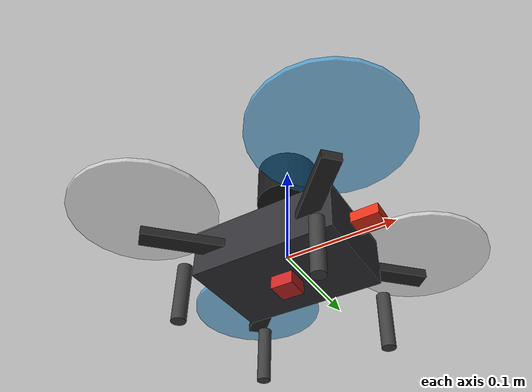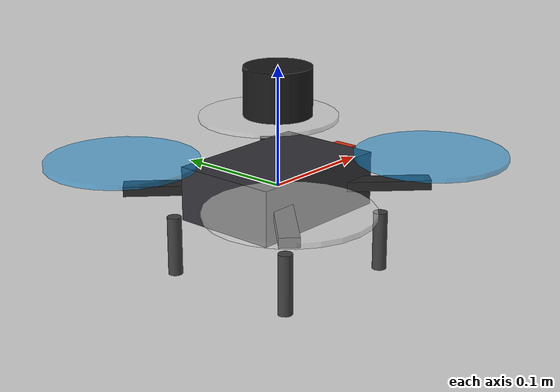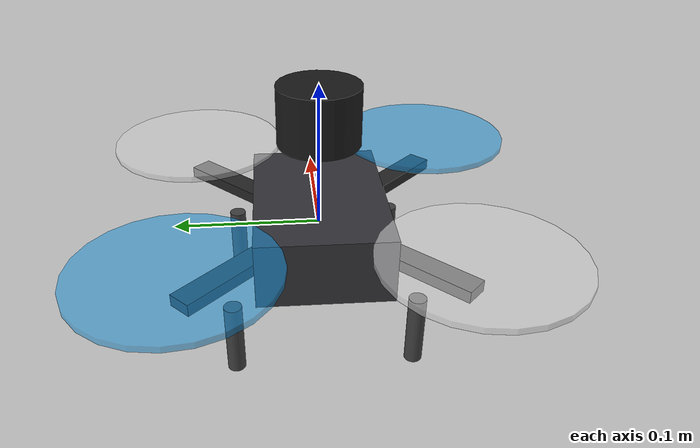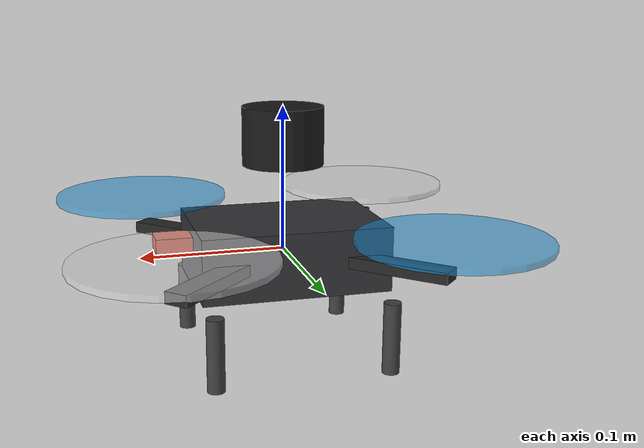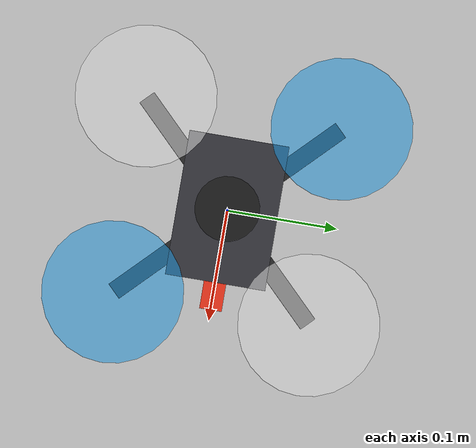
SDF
<?xml version='1.0'?>
<sdf version="1.9">
  <model name="flyduck">

    <!-- QAV250: 250 mm diagonal -> rotors at +/-0.0884 in X pattern -->
    <link name="base_link">
      <inertial>
        <mass>0.75</mass>
        <inertia>
          <ixx>0.0025</ixx>
          <ixy>0</ixy>
          <ixz>0</ixz>
          <iyy>0.0025</iyy>
          <iyz>0</iyz>
          <izz>0.0045</izz>
        </inertia>
      </inertial>

      <collision name="base_collision">
        <geometry>
          <box><size>0.13 0.13 0.05</size></box>
        </geometry>
      </collision>

      <visual name="body_visual">
        <geometry>
          <box><size>0.13 0.09 0.045</size></box>
        </geometry>
        <material>
          <ambient>0.15 0.15 0.17 1</ambient>
          <diffuse>0.2 0.2 0.22 1</diffuse>
        </material>
      </visual>

      <!-- crossed arms: +45 deg carries rotors 2/3, -45 deg carries rotors 0/1 -->
      <visual name="arm_a_visual">
        <pose>0 0 0 0 0 0.785398</pose>
        <geometry>
          <box><size>0.25 0.016 0.008</size></box>
        </geometry>
        <material>
          <ambient>0.1 0.1 0.1 1</ambient>
          <diffuse>0.15 0.15 0.15 1</diffuse>
        </material>
      </visual>
      <visual name="arm_b_visual">
        <pose>0 0 0 0 0 -0.785398</pose>
        <geometry>
          <box><size>0.25 0.016 0.008</size></box>
        </geometry>
        <material>
          <ambient>0.1 0.1 0.1 1</ambient>
          <diffuse>0.15 0.15 0.15 1</diffuse>
        </material>
      </visual>

      <!-- nose marker: +X is forward, matches the Pixhawk arrow -->
      <visual name="nose_visual">
        <pose>0.075 0 0.01 0 0 0</pose>
        <geometry>
          <box><size>0.03 0.02 0.01</size></box>
        </geometry>
        <material>
          <ambient>0.9 0.2 0.1 1</ambient>
          <diffuse>0.9 0.2 0.1 1</diffuse>
        </material>
      </visual>

      <!-- legs: 7.5 cm clearance so the down-facing Evo clears the ground when landed -->
      <collision name="leg_0_collision">
        <pose>0.06 -0.06 -0.05 0 0 0</pose>
        <geometry><cylinder><radius>0.006</radius><length>0.05</length></cylinder></geometry>
      </collision>
      <visual name="leg_0_visual">
        <pose>0.06 -0.06 -0.05 0 0 0</pose>
        <geometry><cylinder><radius>0.006</radius><length>0.05</length></cylinder></geometry>
        <material><ambient>0.2 0.2 0.2 1</ambient><diffuse>0.25 0.25 0.25 1</diffuse></material>
      </visual>

      <collision name="leg_1_collision">
        <pose>-0.06 0.06 -0.05 0 0 0</pose>
        <geometry><cylinder><radius>0.006</radius><length>0.05</length></cylinder></geometry>
      </collision>
      <visual name="leg_1_visual">
        <pose>-0.06 0.06 -0.05 0 0 0</pose>
        <geometry><cylinder><radius>0.006</radius><length>0.05</length></cylinder></geometry>
        <material><ambient>0.2 0.2 0.2 1</ambient><diffuse>0.25 0.25 0.25 1</diffuse></material>
      </visual>

      <collision name="leg_2_collision">
        <pose>0.06 0.06 -0.05 0 0 0</pose>
        <geometry><cylinder><radius>0.006</radius><length>0.05</length></cylinder></geometry>
      </collision>
      <visual name="leg_2_visual">
        <pose>0.06 0.06 -0.05 0 0 0</pose>
        <geometry><cylinder><radius>0.006</radius><length>0.05</length></cylinder></geometry>
        <material><ambient>0.2 0.2 0.2 1</ambient><diffuse>0.25 0.25 0.25 1</diffuse></material>
      </visual>

      <collision name="leg_3_collision">
        <pose>-0.06 -0.06 -0.05 0 0 0</pose>
        <geometry><cylinder><radius>0.006</radius><length>0.05</length></cylinder></geometry>
      </collision>
      <visual name="leg_3_visual">
        <pose>-0.06 -0.06 -0.05 0 0 0</pose>
        <geometry><cylinder><radius>0.006</radius><length>0.05</length></cylinder></geometry>
        <material><ambient>0.2 0.2 0.2 1</ambient><diffuse>0.25 0.25 0.25 1</diffuse></material>
      </visual>
    </link>

    <link name="imu_link">
      <pose relative_to="base_link">0 0 0 0 0 0</pose>
      <inertial>
        <mass>0.005</mass>
        <inertia>
          <ixx>1e-07</ixx><ixy>0</ixy><ixz>0</ixz>
          <iyy>1e-07</iyy><iyz>0</iyz><izz>1e-07</izz>
        </inertia>
      </inertial>
      <!-- 180 deg roll: ArduPilotPlugin expects the IMU in a Z-down frame -->
      <sensor name="imu_sensor" type="imu">
        <gz_frame_id>imu_link</gz_frame_id>
        <pose degrees="true">0 0 0 180 0 0</pose>
        <always_on>1</always_on>
        <update_rate>1000</update_rate>
        <!-- MEMS-grade noise + bias, so EKF fusion is not idealised -->
        <imu>
          <angular_velocity>
            <x><noise type="gaussian">
              <mean>0</mean><stddev>0.0003394</stddev>
              <bias_mean>0.0000075</bias_mean><bias_stddev>0.0000008</bias_stddev>
            </noise></x>
            <y><noise type="gaussian">
              <mean>0</mean><stddev>0.0003394</stddev>
              <bias_mean>0.0000075</bias_mean><bias_stddev>0.0000008</bias_stddev>
            </noise></y>
            <z><noise type="gaussian">
              <mean>0</mean><stddev>0.0003394</stddev>
              <bias_mean>0.0000075</bias_mean><bias_stddev>0.0000008</bias_stddev>
            </noise></z>
          </angular_velocity>
          <linear_acceleration>
            <x><noise type="gaussian">
              <mean>0</mean><stddev>0.004</stddev>
              <bias_mean>0.05</bias_mean><bias_stddev>0.001</bias_stddev>
            </noise></x>
            <y><noise type="gaussian">
              <mean>0</mean><stddev>0.004</stddev>
              <bias_mean>0.05</bias_mean><bias_stddev>0.001</bias_stddev>
            </noise></y>
            <z><noise type="gaussian">
              <mean>0</mean><stddev>0.004</stddev>
              <bias_mean>0.05</bias_mean><bias_stddev>0.001</bias_stddev>
            </noise></z>
          </linear_acceleration>
        </imu>
      </sensor>
    </link>

    <joint name="imu_joint" type="fixed">
      <parent>base_link</parent>
      <child>imu_link</child>
    </joint>

    <!-- rotor 0 = ArduPilot motor 1, front-right, CCW -->
    <link name="rotor_0">
      <pose relative_to="base_link">0.0884 -0.0884 0.023 0 0 0</pose>
      <inertial>
        <mass>0.008</mass>
        <inertia>
          <ixx>1e-06</ixx><ixy>0</ixy><ixz>0</ixz>
          <iyy>2e-05</iyy><iyz>0</iyz><izz>2e-05</izz>
        </inertia>
      </inertial>
      <visual name="rotor_0_visual">
        <geometry>
          <cylinder><radius>0.0635</radius><length>0.004</length></cylinder>
        </geometry>
        <material>
          <ambient>0.1 0.6 0.9 0.55</ambient>
          <diffuse>0.1 0.6 0.9 0.55</diffuse>
        </material>
      </visual>
    </link>
    <joint name="rotor_0_joint" type="revolute">
      <parent>base_link</parent>
      <child>rotor_0</child>
      <axis>
        <xyz>0 0 1</xyz>
        <limit><lower>-1e16</lower><upper>1e16</upper></limit>
        <dynamics><damping>0.0005</damping></dynamics>
      </axis>
    </joint>

    <!-- rotor 1 = ArduPilot motor 2, back-left, CCW -->
    <link name="rotor_1">
      <pose relative_to="base_link">-0.0884 0.0884 0.023 0 0 0</pose>
      <inertial>
        <mass>0.008</mass>
        <inertia>
          <ixx>1e-06</ixx><ixy>0</ixy><ixz>0</ixz>
          <iyy>2e-05</iyy><iyz>0</iyz><izz>2e-05</izz>
        </inertia>
      </inertial>
      <visual name="rotor_1_visual">
        <geometry>
          <cylinder><radius>0.0635</radius><length>0.004</length></cylinder>
        </geometry>
        <material>
          <ambient>0.1 0.6 0.9 0.55</ambient>
          <diffuse>0.1 0.6 0.9 0.55</diffuse>
        </material>
      </visual>
    </link>
    <joint name="rotor_1_joint" type="revolute">
      <parent>base_link</parent>
      <child>rotor_1</child>
      <axis>
        <xyz>0 0 1</xyz>
        <limit><lower>-1e16</lower><upper>1e16</upper></limit>
        <dynamics><damping>0.0005</damping></dynamics>
      </axis>
    </joint>

    <!-- rotor 2 = ArduPilot motor 3, front-left, CW -->
    <link name="rotor_2">
      <pose relative_to="base_link">0.0884 0.0884 0.023 0 0 0</pose>
      <inertial>
        <mass>0.008</mass>
        <inertia>
          <ixx>1e-06</ixx><ixy>0</ixy><ixz>0</ixz>
          <iyy>2e-05</iyy><iyz>0</iyz><izz>2e-05</izz>
        </inertia>
      </inertial>
      <visual name="rotor_2_visual">
        <geometry>
          <cylinder><radius>0.0635</radius><length>0.004</length></cylinder>
        </geometry>
        <material>
          <ambient>0.9 0.9 0.9 0.55</ambient>
          <diffuse>0.9 0.9 0.9 0.55</diffuse>
        </material>
      </visual>
    </link>
    <joint name="rotor_2_joint" type="revolute">
      <parent>base_link</parent>
      <child>rotor_2</child>
      <axis>
        <xyz>0 0 1</xyz>
        <limit><lower>-1e16</lower><upper>1e16</upper></limit>
        <dynamics><damping>0.0005</damping></dynamics>
      </axis>
    </joint>

    <!-- rotor 3 = ArduPilot motor 4, back-right, CW -->
    <link name="rotor_3">
      <pose relative_to="base_link">-0.0884 -0.0884 0.023 0 0 0</pose>
      <inertial>
        <mass>0.008</mass>
        <inertia>
          <ixx>1e-06</ixx><ixy>0</ixy><ixz>0</ixz>
          <iyy>2e-05</iyy><iyz>0</iyz><izz>2e-05</izz>
        </inertia>
      </inertial>
      <visual name="rotor_3_visual">
        <geometry>
          <cylinder><radius>0.0635</radius><length>0.004</length></cylinder>
        </geometry>
        <material>
          <ambient>0.9 0.9 0.9 0.55</ambient>
          <diffuse>0.9 0.9 0.9 0.55</diffuse>
        </material>
      </visual>
    </link>
    <joint name="rotor_3_joint" type="revolute">
      <parent>base_link</parent>
      <child>rotor_3</child>
      <axis>
        <xyz>0 0 1</xyz>
        <limit><lower>-1e16</lower><upper>1e16</upper></limit>
        <dynamics><damping>0.0005</damping></dynamics>
      </axis>
    </joint>

    <!-- RPLIDAR C1: 8 cm above base_link, 0 deg = nose (matches the hardware TF) -->
    <link name="laser">
      <pose relative_to="base_link">0 0 0.08 0 0 0</pose>
      <inertial>
        <mass>0.11</mass>
        <inertia>
          <ixx>4e-05</ixx><ixy>0</ixy><ixz>0</ixz>
          <iyy>4e-05</iyy><iyz>0</iyz><izz>6e-05</izz>
        </inertia>
      </inertial>
      <visual name="laser_visual">
        <geometry>
          <cylinder><radius>0.028</radius><length>0.04</length></cylinder>
        </geometry>
        <material>
          <ambient>0.05 0.05 0.05 1</ambient>
          <diffuse>0.1 0.1 0.1 1</diffuse>
        </material>
      </visual>
      <sensor name="rplidar_c1" type="gpu_lidar">
        <always_on>1</always_on>
        <update_rate>10</update_rate>
        <topic>scan</topic>
        <gz_frame_id>laser</gz_frame_id>
        <lidar>
          <scan>
            <horizontal>
              <samples>500</samples>
              <resolution>1</resolution>
              <min_angle>-3.141593</min_angle>
              <max_angle>3.141593</max_angle>
            </horizontal>
          </scan>
          <range>
            <min>0.15</min>
            <max>12.0</max>
            <resolution>0.01</resolution>
          </range>
          <noise>
            <type>gaussian</type>
            <mean>0</mean>
            <stddev>0.01</stddev>
          </noise>
        </lidar>
      </sensor>
    </link>
    <joint name="laser_joint" type="fixed">
      <parent>base_link</parent>
      <child>laser</child>
    </joint>

    <!-- TeraRanger Evo Mini: single ray, pitched 90 deg to look straight down -->
    <link name="evo_mini">
      <pose relative_to="base_link">0 0 -0.028 0 1.570796 0</pose>
      <inertial>
        <mass>0.009</mass>
        <inertia>
          <ixx>1e-06</ixx><ixy>0</ixy><ixz>0</ixz>
          <iyy>1e-06</iyy><iyz>0</iyz><izz>1e-06</izz>
        </inertia>
      </inertial>
      <visual name="evo_visual">
        <geometry>
          <box><size>0.012 0.02 0.02</size></box>
        </geometry>
        <material>
          <ambient>0.8 0.15 0.15 1</ambient>
          <diffuse>0.8 0.15 0.15 1</diffuse>
        </material>
      </visual>
      <sensor name="evo_mini" type="gpu_lidar">
        <always_on>1</always_on>
        <update_rate>25</update_rate>
        <topic>rangefinder</topic>
        <gz_frame_id>evo_mini</gz_frame_id>
        <lidar>
          <scan>
            <horizontal>
              <samples>1</samples>
              <resolution>1</resolution>
              <min_angle>0</min_angle>
              <max_angle>0</max_angle>
            </horizontal>
          </scan>
          <range>
            <min>0.03</min>
            <max>3.3</max>
            <resolution>0.001</resolution>
          </range>
          <noise>
            <type>gaussian</type>
            <mean>0</mean>
            <stddev>0.005</stddev>
          </noise>
        </lidar>
      </sensor>
    </link>
    <joint name="evo_mini_joint" type="fixed">
      <parent>base_link</parent>
      <child>evo_mini</child>
    </joint>

    <plugin filename="gz-sim-joint-state-publisher-system"
      name="gz::sim::systems::JointStatePublisher">
    </plugin>

    <!-- lift-drag: 2 blade elements per rotor. area tuned so 0.9 kg hovers
         near 26% throttle, matching the real MOT_THST_HOVER -->
    <plugin filename="gz-sim-lift-drag-system" name="gz::sim::systems::LiftDrag">
      <a0>0.3</a0><alpha_stall>1.4</alpha_stall>
      <cla>4.2500</cla><cda>0.10</cda><cma>0.0</cma>
      <cla_stall>-0.025</cla_stall><cda_stall>0.0</cda_stall><cma_stall>0.0</cma_stall>
      <area>0.00112</area><air_density>1.2041</air_density>
      <cp>0.0445 0 0</cp><forward>0 1 0</forward><upward>0 0 1</upward>
      <link_name>rotor_0</link_name>
    </plugin>
    <plugin filename="gz-sim-lift-drag-system" name="gz::sim::systems::LiftDrag">
      <a0>0.3</a0><alpha_stall>1.4</alpha_stall>
      <cla>4.2500</cla><cda>0.10</cda><cma>0.0</cma>
      <cla_stall>-0.025</cla_stall><cda_stall>0.0</cda_stall><cma_stall>0.0</cma_stall>
      <area>0.00112</area><air_density>1.2041</air_density>
      <cp>-0.0445 0 0</cp><forward>0 -1 0</forward><upward>0 0 1</upward>
      <link_name>rotor_0</link_name>
    </plugin>

    <plugin filename="gz-sim-lift-drag-system" name="gz::sim::systems::LiftDrag">
      <a0>0.3</a0><alpha_stall>1.4</alpha_stall>
      <cla>4.2500</cla><cda>0.10</cda><cma>0.0</cma>
      <cla_stall>-0.025</cla_stall><cda_stall>0.0</cda_stall><cma_stall>0.0</cma_stall>
      <area>0.00112</area><air_density>1.2041</air_density>
      <cp>0.0445 0 0</cp><forward>0 1 0</forward><upward>0 0 1</upward>
      <link_name>rotor_1</link_name>
    </plugin>
    <plugin filename="gz-sim-lift-drag-system" name="gz::sim::systems::LiftDrag">
      <a0>0.3</a0><alpha_stall>1.4</alpha_stall>
      <cla>4.2500</cla><cda>0.10</cda><cma>0.0</cma>
      <cla_stall>-0.025</cla_stall><cda_stall>0.0</cda_stall><cma_stall>0.0</cma_stall>
      <area>0.00112</area><air_density>1.2041</air_density>
      <cp>-0.0445 0 0</cp><forward>0 -1 0</forward><upward>0 0 1</upward>
      <link_name>rotor_1</link_name>
    </plugin>

    <plugin filename="gz-sim-lift-drag-system" name="gz::sim::systems::LiftDrag">
      <a0>0.3</a0><alpha_stall>1.4</alpha_stall>
      <cla>4.2500</cla><cda>0.10</cda><cma>0.0</cma>
      <cla_stall>-0.025</cla_stall><cda_stall>0.0</cda_stall><cma_stall>0.0</cma_stall>
      <area>0.00112</area><air_density>1.2041</air_density>
      <cp>0.0445 0 0</cp><forward>0 -1 0</forward><upward>0 0 1</upward>
      <link_name>rotor_2</link_name>
    </plugin>
    <plugin filename="gz-sim-lift-drag-system" name="gz::sim::systems::LiftDrag">
      <a0>0.3</a0><alpha_stall>1.4</alpha_stall>
      <cla>4.2500</cla><cda>0.10</cda><cma>0.0</cma>
      <cla_stall>-0.025</cla_stall><cda_stall>0.0</cda_stall><cma_stall>0.0</cma_stall>
      <area>0.00112</area><air_density>1.2041</air_density>
      <cp>-0.0445 0 0</cp><forward>0 1 0</forward><upward>0 0 1</upward>
      <link_name>rotor_2</link_name>
    </plugin>

    <plugin filename="gz-sim-lift-drag-system" name="gz::sim::systems::LiftDrag">
      <a0>0.3</a0><alpha_stall>1.4</alpha_stall>
      <cla>4.2500</cla><cda>0.10</cda><cma>0.0</cma>
      <cla_stall>-0.025</cla_stall><cda_stall>0.0</cda_stall><cma_stall>0.0</cma_stall>
      <area>0.00112</area><air_density>1.2041</air_density>
      <cp>0.0445 0 0</cp><forward>0 -1 0</forward><upward>0 0 1</upward>
      <link_name>rotor_3</link_name>
    </plugin>
    <plugin filename="gz-sim-lift-drag-system" name="gz::sim::systems::LiftDrag">
      <a0>0.3</a0><alpha_stall>1.4</alpha_stall>
      <cla>4.2500</cla><cda>0.10</cda><cma>0.0</cma>
      <cla_stall>-0.025</cla_stall><cda_stall>0.0</cda_stall><cma_stall>0.0</cma_stall>
      <area>0.00112</area><air_density>1.2041</air_density>
      <cp>-0.0445 0 0</cp><forward>0 1 0</forward><upward>0 0 1</upward>
      <link_name>rotor_3</link_name>
    </plugin>

    <plugin filename="gz-sim-apply-joint-force-system"
      name="gz::sim::systems::ApplyJointForce">
      <joint_name>rotor_0_joint</joint_name>
    </plugin>
    <plugin filename="gz-sim-apply-joint-force-system"
      name="gz::sim::systems::ApplyJointForce">
      <joint_name>rotor_1_joint</joint_name>
    </plugin>
    <plugin filename="gz-sim-apply-joint-force-system"
      name="gz::sim::systems::ApplyJointForce">
      <joint_name>rotor_2_joint</joint_name>
    </plugin>
    <plugin filename="gz-sim-apply-joint-force-system"
      name="gz::sim::systems::ApplyJointForce">
      <joint_name>rotor_3_joint</joint_name>
    </plugin>

    <plugin name="ArduPilotPlugin" filename="ArduPilotPlugin">
      <fdm_addr>127.0.0.1</fdm_addr>
      <fdm_port_in>9002</fdm_port_in>
      <connectionTimeoutMaxCount>5</connectionTimeoutMaxCount>
      <lock_step>1</lock_step>
      <no_time_sync>1</no_time_sync>
      <have_32_channels>0</have_32_channels>

      <modelXYZToAirplaneXForwardZDown degrees="true">0 0 0 180 0 0</modelXYZToAirplaneXForwardZDown>
      <gazeboXYZToNED degrees="true">0 0 0 180 0 90</gazeboXYZToNED>

      <imuName>imu_link::imu_sensor</imuName>

      <!-- multiplier = max rotor rad/s. 1800 ~ 17000 rpm, typical 5 inch on 3S -->
      <control channel="0">
        <jointName>rotor_0_joint</jointName>
        <useForce>1</useForce>
        <multiplier>1800</multiplier>
        <offset>0</offset>
        <servo_min>1000</servo_min>
        <servo_max>2000</servo_max>
        <type>VELOCITY</type>
        <p_gain>0.02</p_gain>
        <i_gain>0</i_gain>
        <d_gain>0</d_gain>
        <i_max>0</i_max>
        <i_min>0</i_min>
        <cmd_max>2.5</cmd_max>
        <cmd_min>-2.5</cmd_min>
        <controlVelocitySlowdownSim>1</controlVelocitySlowdownSim>
      </control>

      <control channel="1">
        <jointName>rotor_1_joint</jointName>
        <useForce>1</useForce>
        <multiplier>1800</multiplier>
        <offset>0</offset>
        <servo_min>1000</servo_min>
        <servo_max>2000</servo_max>
        <type>VELOCITY</type>
        <p_gain>0.02</p_gain>
        <i_gain>0</i_gain>
        <d_gain>0</d_gain>
        <i_max>0</i_max>
        <i_min>0</i_min>
        <cmd_max>2.5</cmd_max>
        <cmd_min>-2.5</cmd_min>
        <controlVelocitySlowdownSim>1</controlVelocitySlowdownSim>
      </control>

      <control channel="2">
        <jointName>rotor_2_joint</jointName>
        <useForce>1</useForce>
        <multiplier>-1800</multiplier>
        <offset>0</offset>
        <servo_min>1000</servo_min>
        <servo_max>2000</servo_max>
        <type>VELOCITY</type>
        <p_gain>0.02</p_gain>
        <i_gain>0</i_gain>
        <d_gain>0</d_gain>
        <i_max>0</i_max>
        <i_min>0</i_min>
        <cmd_max>2.5</cmd_max>
        <cmd_min>-2.5</cmd_min>
        <controlVelocitySlowdownSim>1</controlVelocitySlowdownSim>
      </control>

      <control channel="3">
        <jointName>rotor_3_joint</jointName>
        <useForce>1</useForce>
        <multiplier>-1800</multiplier>
        <offset>0</offset>
        <servo_min>1000</servo_min>
        <servo_max>2000</servo_max>
        <type>VELOCITY</type>
        <p_gain>0.02</p_gain>
        <i_gain>0</i_gain>
        <d_gain>0</d_gain>
        <i_max>0</i_max>
        <i_min>0</i_min>
        <cmd_max>2.5</cmd_max>
        <cmd_min>-2.5</cmd_min>
        <controlVelocitySlowdownSim>1</controlVelocitySlowdownSim>
      </control>

    </plugin>

  </model>
</sdf>
